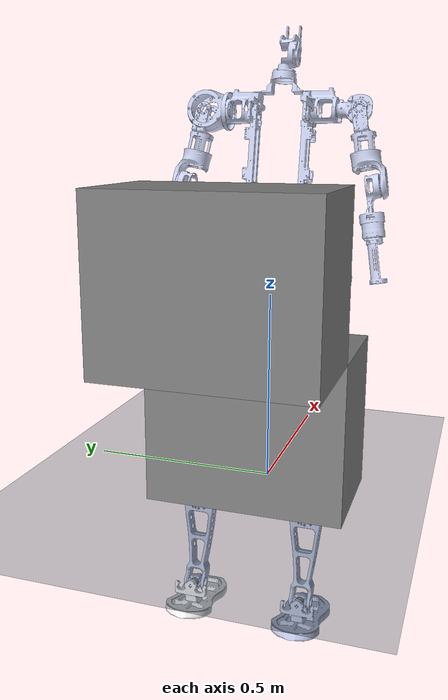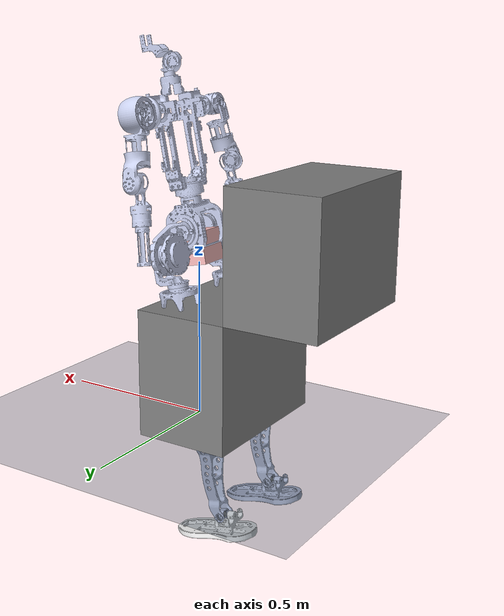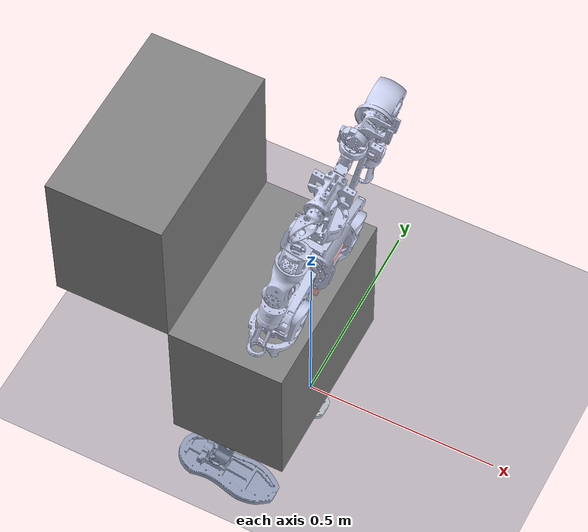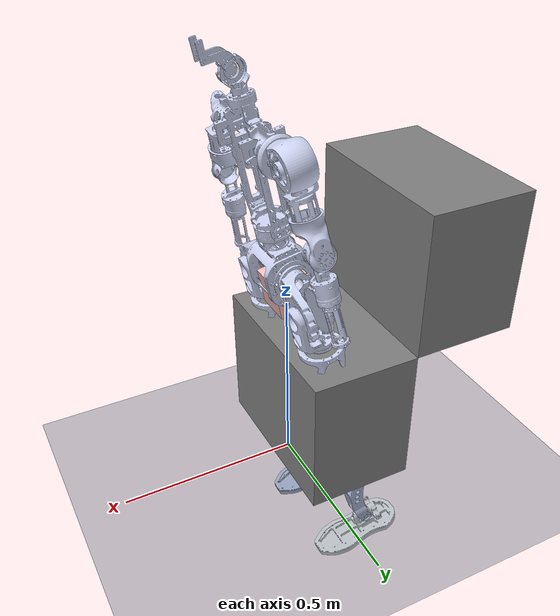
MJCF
<mujoco model="CB02_URDF(ECS-WK)0904B">
  <compiler angle="radian" meshdir="../meshes/"/>
  <option timestep="0.001" gravity="0 0 -9.81" iterations="50" tolerance="1e-10" solver="Newton" jacobian="dense" cone="pyramidal" />

  <statistic meansize="0.156914" extent="1.9142" center="0.00807807 -1.06969e-05 -0.254506"/>

  <default>
    <geom condim="1" type="mesh" />
    <joint limited="true" damping="0.01" frictionloss="0.01" armature="0.01" pos="0 0 0" />
    <motor ctrllimited="false" forcelimited="false" />
    <default class="collision">
      <geom condim="3" group="0" contype="1" conaffinity="15" solref='0.001 2' friction='0.9 0.2 0.2'/>
    </default>
    <default class="visual">
      <geom group="1" conaffinity="0" contype="0" density="0"/>
    </default>
    <default class='leg_joint_param'>
      <joint  damping="0.01" frictionloss="0.01" armature="0.01"/>
    </default>
    <default class='arm_joint_param'>
      <joint  damping="0.01" frictionloss="0.01" armature="0.01"/>
    </default>
  </default>

  <asset>
    <mesh name="base_link" file="base_link.STL"/>
    <mesh name="left_leg_pelvic_pitch_link" file="left_leg_pelvic_pitch_link.STL"/>
    <mesh name="left_leg_pelvic_roll_link" file="left_leg_pelvic_roll_link.STL"/>
    <mesh name="left_leg_pelvic_yaw_link" file="left_leg_pelvic_yaw_link.STL"/>
    <mesh name="left_leg_knee_pitch_link" file="left_leg_knee_pitch_link.STL"/>
    <mesh name="left_leg_ankle_pitch_link" file="left_leg_ankle_pitch_link.STL"/>
    <mesh name="left_leg_ankle_roll_link" file="left_leg_ankle_roll_link.STL"/>
    <mesh name="right_leg_pelvic_pitch_link" file="right_leg_pelvic_pitch_link.STL"/>
    <mesh name="right_leg_pelvic_roll_link" file="right_leg_pelvic_roll_link.STL"/>
    <mesh name="right_leg_pelvic_yaw_link" file="right_leg_pelvic_yaw_link.STL"/>
    <mesh name="right_leg_knee_pitch_link" file="right_leg_knee_pitch_link.STL"/>
    <mesh name="right_leg_ankle_pitch_link" file="right_leg_ankle_pitch_link.STL"/>
    <mesh name="right_leg_ankle_roll_link" file="right_leg_ankle_roll_link.STL"/>
    <mesh name="waist_yaw_link" file="waist_yaw_link.STL"/>
    <mesh name="head_yaw_link" file="head_yaw_link.STL"/>
    <mesh name="head_pitch_link" file="head_pitch_link.STL"/>
    <mesh name="left_shoulder_pitch_link" file="left_shoulder_pitch_link.STL"/>
    <mesh name="left_shoulder_roll_link" file="left_shoulder_roll_link.STL"/>
    <mesh name="left_shoulder_yaw_link" file="left_shoulder_yaw_link.STL"/>
    <mesh name="left_elbow_pitch_link" file="left_elbow_pitch_link.STL"/>
    <mesh name="left_wrist_yaw_link" file="left_wrist_yaw_link.STL"/>
    <mesh name="right_shoulder_pitch_link" file="right_shoulder_pitch_link.STL"/>
    <mesh name="right_shoulder_roll_link" file="right_shoulder_roll_link.STL"/>
    <mesh name="right_shoulder_yaw_link" file="right_shoulder_yaw_link.STL"/>
    <mesh name="right_elbow_pitch_link" file="right_elbow_pitch_link.STL"/>
    <mesh name="right_wrist_yaw_link" file="right_wrist_yaw_link.STL"/>

    <texture type="skybox" builtin="gradient" rgb1="0.3 0.5 0.7" rgb2="0 0 0" width="512" height="512"/>
    <texture name="texplane" type="2d" builtin="checker" rgb1=".2 .3 .4" rgb2=".1 0.15 0.2"
        width="512" height="512" mark="cross" markrgb=".8 .8 .8"/>
    <texture name="texplane2" type="2d" builtin="checker" rgb1="1 0.3137 0.1843" rgb2="0.0 0.30196 0.38039"
        width="512" height="512" mark="cross" markrgb=".8 .8 .8"/>

    <material name="matplane" reflectance="0." texture="texplane" texrepeat="1 1" texuniform="true"/>
    <material name="matplane2" reflectance="0.1" texture="texplane2" texrepeat="1 1" texuniform="true"/>

  </asset>

  <worldbody>
    <light directional="true" diffuse=".4 .4 .4" specular="0.1 0.1 0.1" pos="0 0 5.0" dir="0 0 -1" castshadow="false"/>
    <light directional="true" diffuse=".6 .6 .6" specular="0.2 0.2 0.2" pos="0 0 4" dir="0 0 -1"/>
    <geom name="ground" type="plane" size="0 0 1" pos="0.001 0 0" quat="1 0 0 0" material="matplane" condim="1" conaffinity='15'/>

    <body name="torso" pos="0 0 0.55" euler="0 0.2 0" >
      <freejoint name="root" />
      <inertial pos="0.0071297 2.31e-05 -0.065761" quat="0.707071 0.707142 0.000946903 0.000931489" mass="4.4711" diaginertia="0.013383 0.011047 0.00875277"/>
      <geom type="mesh" contype="15" conaffinity="1" group="1" density="0" rgba="0.79216 0.81961 0.93333 1" mesh="base_link" class="collision"/>
      <geom type="mesh" class="visual" mesh="base_link"/>
      <geom size="0.05 0.05 0.05" contype="0" conaffinity="0" group="1" pos="0 0 0" type="box" mass="0.013191021" rgba="1.75294 0.75294 0.75294 1"/>
      <site name='imu' size='0.01' pos='0.0 0 0.0'/>

      <body name="left_leg_pelvic_pitch_link" pos="0 0.061 0.0575">
        <inertial pos="0.007392 0.0735787 -0.0476224" quat="0.407442 0.910672 -0.0585159 0.0352733" mass="2.16712" diaginertia="0.00390966 0.00329264 0.00186876"/>
        <joint name="left_leg_pelvic_pitch_joint" pos="0 0 0" axis="0 1 0" range="-1.9199 1.5708" class="leg_joint_param"/>
        <geom type="mesh" contype="0" conaffinity="0" group="1" density="0" rgba="0.792157 0.819608 0.933333 1" mesh="left_leg_pelvic_pitch_link"/>
        <body name="left_leg_pelvic_roll_link" pos="-0.0028 0.0815 -0.055">
          <inertial pos="0.0317977 1.95e-05 -0.0477515" quat="0.98688 -0.00194293 -0.161011 -0.0118421" mass="0.494852" diaginertia="0.00116108 0.00109256 0.000369379"/>
          <joint name="left_leg_pelvic_roll_joint" pos="0 0 0" axis="1 0 0" range="-0.17453 1.5708" class="leg_joint_param"/>
          <geom type="mesh" contype="0" conaffinity="0" group="1" density="0" rgba="0.792157 0.819608 0.933333 1" mesh="left_leg_pelvic_roll_link"/>
          <body name="left_leg_pelvic_yaw_link" pos="0 0 -0.0975">
            <inertial pos="-0.00776171 0.00252331 -0.166394" quat="0.595531 -0.03466 -0.013831 0.802465" mass="3.67359" diaginertia="0.0549996 0.0539441 0.00435641"/>
            <joint name="left_leg_pelvic_yaw_joint" pos="0 0 0" axis="0 0 1" range="-1.5708 1.5708" class="leg_joint_param"/>
            <geom type="mesh" contype="0" conaffinity="0" group="1" density="0" rgba="0.792157 0.819608 0.933333 1" mesh="left_leg_pelvic_yaw_link"/>
            <body name="left_leg_knee_pitch_link" pos="-0.02 0 -0.2735">
              <inertial pos="0.00342465 -0.00267008 -0.196705" quat="0.672917 -0.0298664 -0.000587356 0.739114" mass="3.70154" diaginertia="0.0426134 0.0424999 0.00382652"/>
              <joint name="left_leg_knee_pitch_joint" pos="0 0 0" axis="0 1 0" range="0 2.5307" class="leg_joint_param"/>
              <geom type="mesh" contype="0" conaffinity="0" group="1" density="0" rgba="0.792157 0.819608 0.933333 1" mesh="left_leg_knee_pitch_link"/>
              <body name="left_leg_ankle_pitch_link" pos="0 0 -0.453">
                <inertial pos="0 -1.93e-06 0" quat="0.707107 0.707107 0 0" mass="0.0573757" diaginertia="1.172e-05 1.044e-05 9.47e-06"/>
                <joint name="left_leg_ankle_pitch_joint" pos="0 0 0" axis="0 1 0" range="-0.87266 0.50614" class="leg_joint_param"/>
                <geom type="mesh" contype="0" conaffinity="0" group="1" density="0" rgba="0.792157 0.819608 0.933333 1" mesh="left_leg_ankle_pitch_link"/>
                <body name="left_leg_ankle_roll_link">
                  <site name='left_force' size='0.01' pos='0.0 0 0.0'/>
                  <inertial pos="0.0187444 0.00117256 -0.0409485" quat="-0.0190107 0.668942 -0.0359937 0.742199" mass="0.882585" diaginertia="0.0045177 0.00422814 0.00101679"/>
                  <joint name="left_leg_ankle_roll_joint" pos="0 0 0" axis="1 0 0" range="-0.50614 0.50614" class="leg_joint_param"/>
                  <geom type="mesh" rgba="1 1 1 1" mesh="left_leg_ankle_roll_link" class="collision"/>
                </body>
              </body>
            </body>
          </body>
        </body>
      </body>
      <body name="right_leg_pelvic_pitch_link" pos="0 -0.061 0.0575">
        <inertial pos="0.00736841 -0.0735154 -0.0475662" quat="0.910954 0.407365 -0.033918 0.0553693" mass="2.1692" diaginertia="0.00392629 0.0033128 0.00187006"/>
        <joint name="right_leg_pelvic_pitch_joint" pos="0 0 0" axis="0 1 0" range="-1.9199 1.5708" class="leg_joint_param"/>
        <geom type="mesh" contype="0" conaffinity="0" group="1" density="0" rgba="0.792157 0.819608 0.933333 1" mesh="right_leg_pelvic_pitch_link"/>
        <body name="right_leg_pelvic_roll_link" pos="-0.0028 -0.0815 -0.055">
          <inertial pos="0.0317977 1.95e-05 -0.0477515" quat="0.98688 -0.00194293 -0.161011 -0.0118421" mass="0.494852" diaginertia="0.00116108 0.00109256 0.000369379"/>
          <joint name="right_leg_pelvic_roll_joint" pos="0 0 0" axis="1 0 0" range="-1.5708 0.17453" class="leg_joint_param"/>
          <geom type="mesh" contype="0" conaffinity="0" group="1" density="0" rgba="0.792157 0.819608 0.933333 1" mesh="right_leg_pelvic_roll_link"/>
          <body name="right_leg_pelvic_yaw_link" pos="0 0 -0.0975">
            <inertial pos="-0.00780257 -0.00226954 -0.163533" quat="0.799373 -0.0122552 -0.0329539 0.599806" mass="3.75132" diaginertia="0.0570832 0.055993 0.00452655"/>
            <joint name="right_leg_pelvic_yaw_joint" pos="0 0 0" axis="0 0 1" range="-1.5708 1.5708" class="leg_joint_param"/>
            <geom type="mesh" contype="0" conaffinity="0" group="1" density="0" rgba="0.792157 0.819608 0.933333 1" mesh="right_leg_pelvic_yaw_link"/>
            <geom type="mesh" rgba="0.792157 0.819608 0.933333 1" mesh="right_leg_pelvic_yaw_link"/>
            <body name="right_leg_knee_pitch_link" pos="-0.02 0 -0.2735">
              <inertial pos="0.0034152 0.0026614 -0.19654" quat="0.741493 -0.000441867 -0.029922 0.670293" mass="3.705" diaginertia="0.0425043 0.0423949 0.00383188"/>
              <joint name="right_leg_knee_pitch_joint" pos="0 0 0" axis="0 1 0" range="0 2.5307" class="leg_joint_param"/>
              <geom type="mesh" contype="0" conaffinity="0" group="1" density="0" rgba="0.79216 0.81961 0.93333 1" mesh="right_leg_knee_pitch_link"/>
              <body name="right_leg_ankle_pitch_link" pos="0 0 -0.453">
                <inertial pos="0 -1.93e-06 0" quat="0.707107 0.707107 0 0" mass="0.0573757" diaginertia="1.172e-05 1.044e-05 9.47e-06"/>
                <joint name="right_leg_ankle_pitch_joint" pos="0 0 0" axis="0 1 0" range="-0.87266 0.50614" class="leg_joint_param"/>
                <geom type="mesh" contype="0" conaffinity="0" group="1" density="0" rgba="0.792157 0.819608 0.933333 1" mesh="right_leg_ankle_pitch_link"/>
                <body name="right_leg_ankle_roll_link">
                  <site name='right_force' size='0.01' pos='0.0 0 0.0'/>
                  <inertial pos="0.0195121 -0.00117074 -0.0336112" quat="0.011605 0.679583 0.0284444 0.732955" mass="0.882445" diaginertia="0.0047921 0.00448529 0.00114232"/>
                  <joint name="right_leg_ankle_roll_joint" pos="0 0 0" axis="1 0 0" range="-0.50614 0.50614" class="leg_joint_param"/>
                  <geom type="mesh" rgba="0.792157 0.819608 0.933333 1" mesh="right_leg_ankle_roll_link" class="collision"/>
                </body>
              </body>
            </body>
          </body>
        </body>
      </body>
      <body name="waist_yaw_link" pos="0 0 0.15424">
        <inertial pos="-0.0140343 -1.33836e-05 0.209053" quat="0.9989 0.00321134 0.0459158 0.00893121" mass="10.0462" diaginertia="0.164821 0.15665 0.0552951"/>
        <joint name="waist_yaw_joint" pos="0 0 0" axis="0 0 1" range="-1.5708 1.5708"/>
        <geom type="mesh" contype="0" conaffinity="0" group="1" density="0" rgba="0.792157 0.819608 0.933333 1" mesh="waist_yaw_link"/>
        <geom type="mesh" rgba="0.792157 0.819608 0.933333 1" mesh="waist_yaw_link"/>
        <geom pos="0 0 0.3623" type="mesh" contype="0" conaffinity="0" group="1" density="0" rgba="0.792157 0.819608 0.933333 1" mesh="head_yaw_link"/>
        <geom pos="0 0 0.3623" type="mesh" rgba="0.792157 0.819608 0.933333 1" mesh="head_yaw_link"/>
        <geom pos="0 0 0.4083" type="mesh" contype="0" conaffinity="0" group="1" density="0" rgba="0.792157 0.819608 0.933333 1" mesh="head_pitch_link"/>
        <geom pos="0 0 0.4083" type="mesh" rgba="0.792157 0.819608 0.933333 1" mesh="head_pitch_link"/>
        <body name="left_shoulder_pitch_link" pos="0 0.145 0.2673">
          <inertial pos="0.00759901 0.0512615 8.961e-05" quat="0.328695 0.616506 -0.35051 0.623717" mass="0.649305" diaginertia="0.000372057 0.0003106 0.000238063"/>
          <joint name="left_shoulder_pitch_joint" pos="0 0 0" axis="0 1 0" range="-3.1416 1.0472"/>
          <geom type="mesh" contype="0" conaffinity="0" group="1" density="0" rgba="0.792157 0.819608 0.933333 1" mesh="left_shoulder_pitch_link"/>
          <body name="left_shoulder_roll_link" pos="0 0.057 0" quat="0.996196 0.0871393 0 0">
            <inertial pos="1.11e-06 -0.00020652 -0.0859753" quat="0.707636 -0.00264697 -0.00929817 0.706511" mass="0.609838" diaginertia="0.000918836 0.000781359 0.000292025"/>
            <joint name="left_shoulder_roll_joint" pos="0 0 0" axis="1 0 0" range="0 1.5716"/>
            <geom type="mesh" contype="0" conaffinity="0" group="1" density="0" rgba="0.792157 0.819608 0.933333 1" mesh="left_shoulder_roll_link"/>
            <geom type="mesh" rgba="0.792157 0.819608 0.933333 1" mesh="left_shoulder_roll_link"/>
            <body name="left_shoulder_yaw_link" pos="0 0 -0.1315">
              <inertial pos="2.838e-05 0.0200011 -0.0278826" quat="0.971999 -0.233099 0.00848888 0.0284864" mass="0.0788364" diaginertia="7.36273e-05 7.1718e-05 1.83447e-05"/>
              <joint name="left_shoulder_yaw_joint" pos="0 0 0" axis="0 0 1" range="-1.5708 1.5708"/>
              <geom type="mesh" contype="0" conaffinity="0" group="1" density="0" rgba="0.792157 0.819608 0.933333 1" mesh="left_shoulder_yaw_link"/>
              <geom type="mesh" rgba="0.792157 0.819608 0.933333 1" mesh="left_shoulder_yaw_link"/>
              <body name="left_elbow_pitch_link" pos="0 0 -0.061">
                <inertial pos="-0.00050872 -0.00152061 -0.0445354" quat="0.996287 -0.0213732 -0.000680601 -0.0833931" mass="1.01311" diaginertia="0.0025792 0.00249642 0.000284103"/>
                <joint name="left_elbow_pitch_joint" pos="0 0 0" axis="0 1 0" range="-1.8675 0"/>
                <geom type="mesh" contype="0" conaffinity="0" group="1" density="0" rgba="0.792157 0.819608 0.933333 1" mesh="left_elbow_pitch_link"/>
                <geom type="mesh" rgba="0.792157 0.819608 0.933333 1" mesh="left_elbow_pitch_link"/>
                <body name="left_wrist_yaw_link" pos="0 0 -0.131">
                  <inertial pos="0.00066742 -0.00325051 -0.0313998" quat="0.691332 0.00526097 -0.011877 0.72242" mass="0.124406" diaginertia="0.000136166 0.000132622 2.10627e-05"/>
                  <joint name="left_wrist_yaw_joint" pos="0 0 0" axis="0 0 1" range="-1.5708 1.5708"/>
                  <geom type="mesh" contype="0" conaffinity="0" group="1" density="0" rgba="0.792157 0.819608 0.933333 1" mesh="left_wrist_yaw_link"/>
                  <geom type="mesh" rgba="0.792157 0.819608 0.933333 1" mesh="left_wrist_yaw_link"/>
                </body>
              </body>
            </body>
          </body>
        </body>
        <body name="right_shoulder_pitch_link" pos="0 -0.145 0.2673">
          <inertial pos="0.00755271 -0.0511139 4.648e-05" quat="0.615388 0.340055 -0.614594 0.357678" mass="0.652096" diaginertia="0.000378542 0.000316381 0.000241007"/>
          <joint name="right_shoulder_pitch_joint" pos="0 0 0" axis="0 1 0" range="-3.1416 1.0472"/>
          <geom type="mesh" contype="0" conaffinity="0" group="1" density="0" rgba="0.792157 0.819608 0.933333 1" mesh="right_shoulder_pitch_link"/>
          <body name="right_shoulder_roll_link" pos="0 -0.057 0" quat="0.996196 -0.0871393 0 0">
            <inertial pos="1.294e-05 0.00019306 -0.085944" quat="0.707137 -0.0100122 -0.00276305 0.707" mass="0.610511" diaginertia="0.000919856 0.00078203 0.000292564"/>
            <joint name="right_shoulder_roll_joint" pos="0 0 0" axis="1 0 0" range="-1.5716 0"/>
            <geom type="mesh" contype="0" conaffinity="0" group="1" density="0" rgba="0.792157 0.819608 0.933333 1" mesh="right_shoulder_roll_link"/>
            <geom type="mesh" rgba="0.792157 0.819608 0.933333 1" mesh="right_shoulder_roll_link"/>
            <body name="right_shoulder_yaw_link" pos="0 0 -0.1315">
              <inertial pos="-2.838e-05 -0.020001 -0.027883" quat="0.971999 0.233099 -0.00848888 0.0284864" mass="0.078836" diaginertia="7.36273e-05 7.1718e-05 1.83447e-05"/>
              <joint name="right_shoulder_yaw_joint" pos="0 0 0" axis="0 0 1" range="-1.5708 1.5708"/>
              <geom type="mesh" contype="0" conaffinity="0" group="1" density="0" rgba="0.79216 0.81961 0.93333 1" mesh="right_shoulder_yaw_link"/>
              <geom type="mesh" rgba="0.79216 0.81961 0.93333 1" mesh="right_shoulder_yaw_link"/>
              <body name="right_elbow_pitch_link" pos="0 0 -0.061">
                <inertial pos="-0.0002278 0.00151852 -0.044548" quat="0.997639 0.0217184 0.00469568 0.0649798" mass="1.01349" diaginertia="0.00257925 0.00249811 0.000284317"/>
                <joint name="right_elbow_pitch_joint" pos="0 0 0" axis="0 1 0" range="-1.8675 0"/>
                <geom type="mesh" contype="0" conaffinity="0" group="1" density="0" rgba="0.792157 0.819608 0.933333 1" mesh="right_elbow_pitch_link"/>
                <geom type="mesh" rgba="0.792157 0.819608 0.933333 1" mesh="right_elbow_pitch_link"/>
                <body name="right_wrist_yaw_link" pos="0 0 -0.128">
                  <inertial pos="-0.00066742 0.00325051 -0.0343998" quat="0.691332 -0.00526097 0.011877 0.72242" mass="0.124406" diaginertia="0.000136166 0.000132622 2.10627e-05"/>
                  <joint name="right_wrist_yaw_joint" pos="0 0 0" axis="0 0 1" range="-1.5708 1.5708"/>
                  <geom type="mesh" contype="0" conaffinity="0" group="1" density="0" rgba="0.792157 0.819608 0.933333 1" mesh="right_wrist_yaw_link"/>
                  <geom type="mesh" rgba="0.792157 0.819608 0.933333 1" mesh="right_wrist_yaw_link"/>
                </body>
              </body>
            </body>
          </body>
        </body>
      </body>
    </body>
  <geom pos="-0.09999999999999998 0.0 0.2" type="box" size="0.15 0.25 0.2" quat="1.0 0.0 0.0 0.0" /><geom pos="-0.39999999999999997 0.0 0.6000000000000001" type="box" size="0.15 0.25 0.2" quat="1.0 0.0 0.0 0.0" />
  </worldbody>

  <actuator>
    <motor joint="left_leg_pelvic_pitch_joint" class="leg_joint_param"/>
    <motor joint="left_leg_pelvic_roll_joint"  class="leg_joint_param"/>
    <motor joint="left_leg_pelvic_yaw_joint"  class="leg_joint_param"/>
    <motor joint="left_leg_knee_pitch_joint"  class="leg_joint_param"/>
    <motor joint="left_leg_ankle_pitch_joint"  class="leg_joint_param"/>
    <motor joint="left_leg_ankle_roll_joint"  class="leg_joint_param"/>

    <motor joint="right_leg_pelvic_pitch_joint"  class="leg_joint_param"/>
    <motor joint="right_leg_pelvic_roll_joint"  class="leg_joint_param"/>
    <motor joint="right_leg_pelvic_yaw_joint"  class="leg_joint_param"/>
    <motor joint="right_leg_knee_pitch_joint"  class="leg_joint_param"/>
    <motor joint="right_leg_ankle_pitch_joint"  class="leg_joint_param"/>
    <motor joint="right_leg_ankle_roll_joint"  class="leg_joint_param"/>

    <motor joint="waist_yaw_joint"  class="arm_joint_param"/>

    <motor joint="left_shoulder_pitch_joint"  class="arm_joint_param"/>
    <motor joint="left_shoulder_roll_joint"  class="arm_joint_param"/>
    <motor joint="left_shoulder_yaw_joint"  class="arm_joint_param"/>
    <motor joint="left_elbow_pitch_joint"  class="arm_joint_param"/>
    <motor joint="left_wrist_yaw_joint"  class="arm_joint_param"/>

    <motor joint="right_shoulder_pitch_joint"  class="arm_joint_param"/>
    <motor joint="right_shoulder_roll_joint"  class="arm_joint_param"/>
    <motor joint="right_shoulder_yaw_joint"  class="arm_joint_param"/>
    <motor joint="right_elbow_pitch_joint"  class="arm_joint_param"/>
    <motor joint="right_wrist_yaw_joint"  class="arm_joint_param"/>
  </actuator>

    <sensor>
    <framequat     name='orientation' objtype='site' noise='0.001' objname='imu'/>
    <framepos     name='position' objtype='site' noise='0.001' objname='imu'/>
    <gyro          name='angular-velocity'    site='imu' noise='0.005' cutoff='34.9'/>
    <velocimeter   name='linear-velocity'     site='imu' noise='0.001' cutoff='30'/>
    <accelerometer name='linear-acceleration' site='imu' noise='0.005' cutoff='157'/>
    <magnetometer  name='magnetometer'        site='imu'/>

    <force  name='left_force'        site='left_force'/>
    <force  name='right_force'        site='right_force'/>
  </sensor>

</mujoco>
